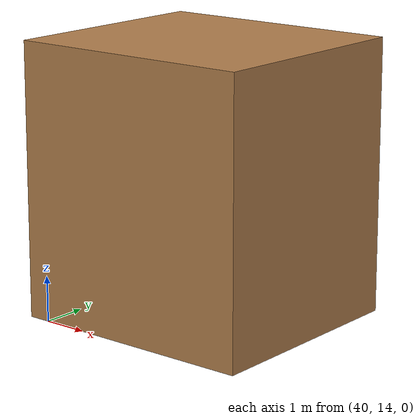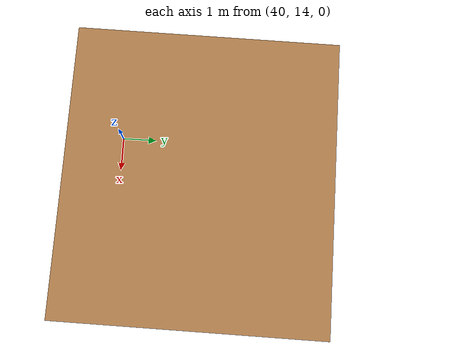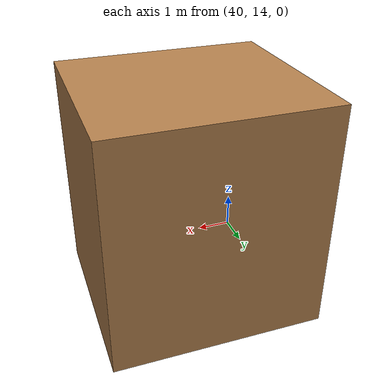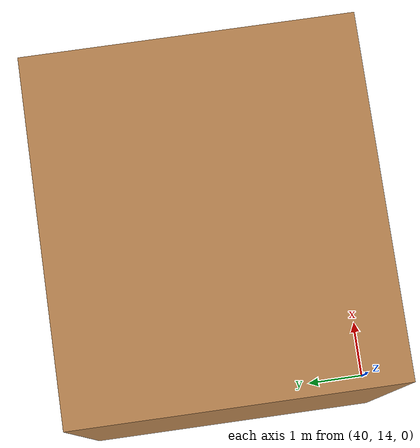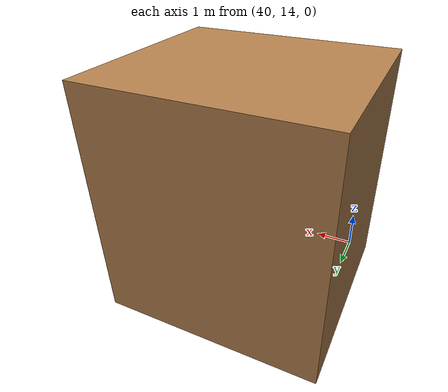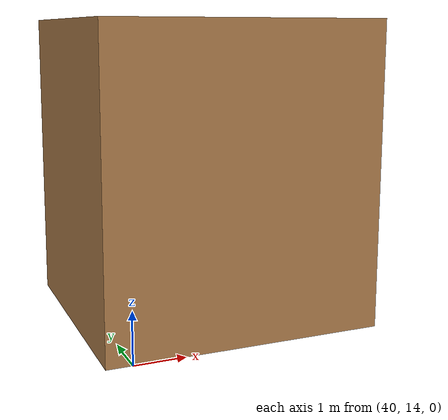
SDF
<?xml version="1.0"?>
<sdf version="1.6">
  <model name="ob_9">
    <pose>0 0 0 0 0 0</pose>
    <static>0</static>
    <link name="element_1_link">
      <pose>42.25 16.5 3 0 0 0</pose>
      <inertial>
        <pose>42.25 16.5 3 0 0 0</pose>
        <mass>1</mass>
        <inertia>
          <ixx>0.36</ixx>
          <ixy>0</ixy>
          <ixz>0</ixz>
          <iyy>1.3225</iyy>
          <iyz>0</iyz>
          <izz>0.49</izz>
        </inertia>
      </inertial>

      <collision name="collision">
        <geometry>
          <box>
            <size>5.5 5 6</size>
          </box>
        </geometry>
      </collision>

      <visual name="visual">
        <geometry>
          <box>
            <size>5.5 5 6</size>
          </box>
        </geometry>
         <material>
            <script>
              <uri>file://media/materials/scripts/gazebo.material</uri>
              <name>Gazebo/Wood</name>
            </script>
          </material>
      </visual>
    </link>

  </model>
</sdf>
